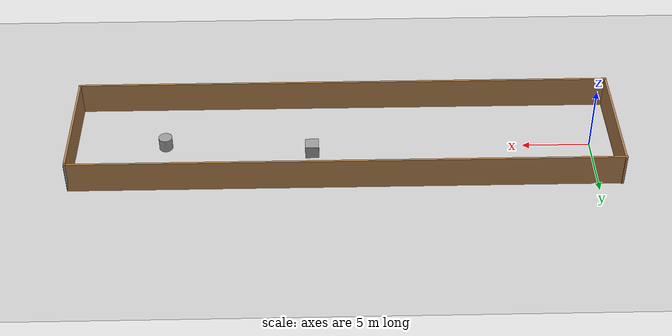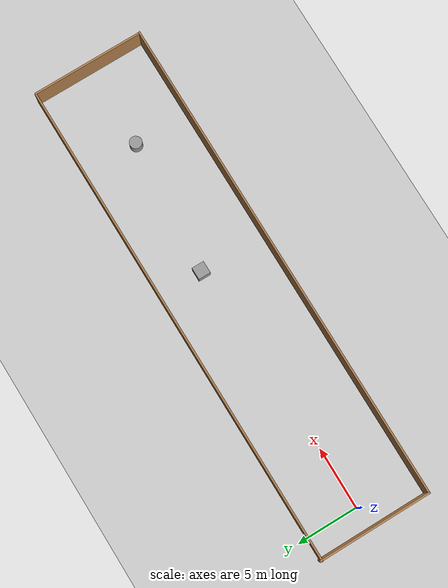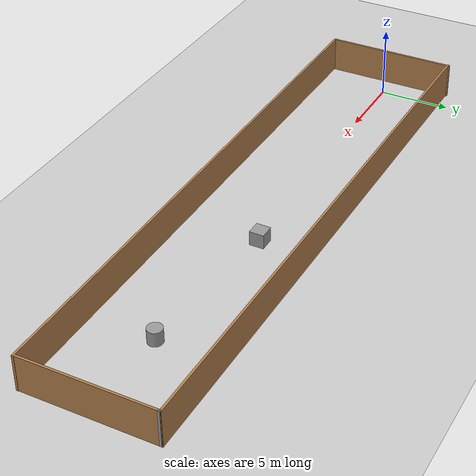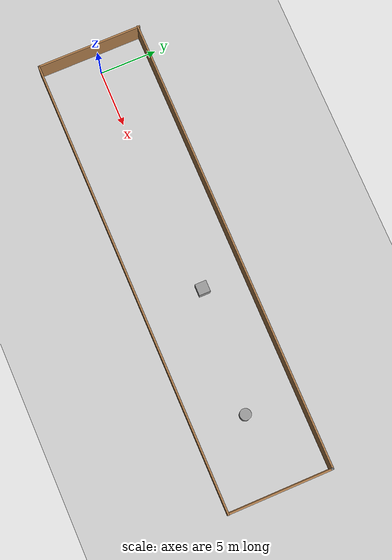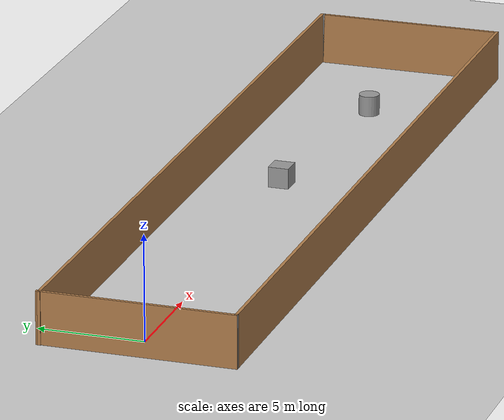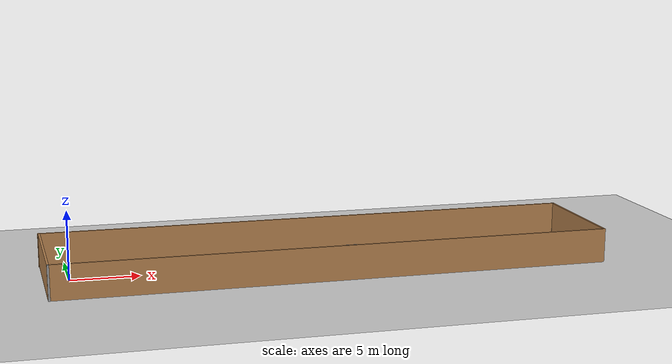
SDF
<sdf version="1.7">
 <world name="default">
  <light name="sun" type="directional">
   <pose>0 0 10 0 -0 0</pose>
   <diffuse>0.8 0.8 0.8 1</diffuse>
   <specular>0.2 0.2 0.2 1</specular>
   <attenuation>
    <range>1000</range>
    <constant>0.9</constant>
    <linear>0.01</linear>
    <quadratic>0.001</quadratic>
   </attenuation>
   <direction>-0.5 0.1 -0.9</direction>
   <spot><inner_angle>0</inner_angle><outer_angle>0</outer_angle><falloff>0</falloff></spot>
  </light>
  <model name="ground_plane">
   <static>1</static>
   <link name="link">
    <collision name="collision">
     <geometry><plane><normal>0 0 1</normal><size>100 100</size></plane></geometry>
     <surface><friction><ode><mu>100</mu><mu2>50</mu2></ode></friction></surface>
    </collision>
    <visual name="visual">
     <cast_shadows>0</cast_shadows>
     <geometry><plane><normal>0 0 1</normal><size>100 100</size></plane></geometry>
     <material>
      <script><uri>file://media/materials/scripts/gazebo.material</uri><name>Gazebo/Grey</name></script>
     </material>
    </visual>
   </link>
  </model>
  <gravity>0 0 -9.8</gravity>
  <magnetic_field>6e-06 2.3e-05 -4.2e-05</magnetic_field>
  <atmosphere type="adiabatic"/>
  <physics type="ode">
   <max_step_size>0.001</max_step_size>
   <real_time_factor>1</real_time_factor>
   <real_time_update_rate>1000</real_time_update_rate>
  </physics>
  <scene><ambient>0.4 0.4 0.4 1</ambient><background>0.7 0.7 0.7 1</background><shadows>1</shadows></scene>
  <spherical_coordinates>
   <surface_model>EARTH_WGS84</surface_model>
   <latitude_deg>0</latitude_deg>
   <longitude_deg>0</longitude_deg>
   <elevation>0</elevation>
   <heading_deg>0</heading_deg>
  </spherical_coordinates>
  <model name="mo_hinh">
   <pose>18.3035 -0.232501 0 0 -0 0</pose>
   <link name="Wall_1">
    <collision name="Wall_1_Collision">
     <geometry><box><size>9.25 0.15 2.5</size></box></geometry>
     <pose>0 0 1.25 0 -0 0</pose>
    </collision>
    <visual name="Wall_1_Visual">
     <pose>0 0 1.25 0 -0 0</pose>
     <geometry><box><size>9.25 0.15 2.5</size></box></geometry>
     <material>
      <script><uri>file://media/materials/scripts/gazebo.material</uri><name>Gazebo/Wood</name></script>
      <ambient>1 1 1 1</ambient>
     </material>
     <meta><layer>0</layer></meta>
    </visual>
    <pose>-20.033 0.009308 0 0 -0 -1.5708</pose>
   </link>
   <link name="Wall_10">
    <collision name="Wall_10_Collision">
     <geometry><box><size>0.15 0.15 2.5</size></box></geometry>
     <pose>0 0 1.25 0 -0 0</pose>
    </collision>
    <visual name="Wall_10_Visual">
     <pose>0 0 1.25 0 -0 0</pose>
     <geometry><box><size>0.15 0.15 2.5</size></box></geometry>
     <material>
      <script><uri>file://media/materials/scripts/gazebo.material</uri><name>Gazebo/Grey</name></script>
      <ambient>1 1 1 1</ambient>
     </material>
     <meta><layer>0</layer></meta>
    </visual>
    <pose>20.0278 4.4703 0 0 -0 0</pose>
   </link>
   <link name="Wall_12">
    <collision name="Wall_12_Collision">
     <geometry><box><size>40.25 0.15 2.5</size></box></geometry>
     <pose>0 0 1.25 0 -0 0</pose>
    </collision>
    <visual name="Wall_12_Visual">
     <pose>0 0 1.25 0 -0 0</pose>
     <geometry><box><size>40.25 0.15 2.5</size></box></geometry>
     <material>
      <script><uri>file://media/materials/scripts/gazebo.material</uri><name>Gazebo/Wood</name></script>
      <ambient>1 1 1 1</ambient>
     </material>
     <meta><layer>0</layer></meta>
    </visual>
    <pose>0.022194 -4.55931 0 0 -0 3.14159</pose>
   </link>
   <link name="Wall_13">
    <collision name="Wall_13_Collision">
     <geometry><box><size>0.15 0.15 2.5</size></box></geometry>
     <pose>0 0 1.25 0 -0 0</pose>
    </collision>
    <visual name="Wall_13_Visual">
     <pose>0 0 1.25 0 -0 0</pose>
     <geometry><box><size>0.15 0.15 2.5</size></box></geometry>
     <material>
      <script><uri>file://media/materials/scripts/gazebo.material</uri><name>Gazebo/Grey</name></script>
      <ambient>1 1 1 1</ambient>
     </material>
     <meta><layer>0</layer></meta>
    </visual>
    <pose>-20.0278 -4.55931 0 0 -0 0</pose>
   </link>
   <link name="Wall_15">
    <collision name="Wall_15_Collision">
     <geometry><box><size>9 0.15 2.5</size></box></geometry>
     <pose>0 0 1.25 0 -0 0</pose>
    </collision>
    <visual name="Wall_15_Visual">
     <pose>0 0 1.25 0 -0 0</pose>
     <geometry><box><size>9 0.15 2.5</size></box></geometry>
     <material>
      <script><uri>file://media/materials/scripts/gazebo.material</uri><name>Gazebo/Wood</name></script>
      <ambient>1 1 1 1</ambient>
     </material>
     <meta><layer>0</layer></meta>
    </visual>
    <pose>20.051 0.005714 0 0 -0 1.5708</pose>
   </link>
   <link name="Wall_16">
    <collision name="Wall_16_Collision">
     <geometry><box><size>0.15 0.15 2.5</size></box></geometry>
     <pose>0 0 1.25 0 -0 0</pose>
    </collision>
    <visual name="Wall_16_Visual">
     <pose>0 0 1.25 0 -0 0</pose>
     <geometry><box><size>0.15 0.15 2.5</size></box></geometry>
     <material>
      <script><uri>file://media/materials/scripts/gazebo.material</uri><name>Gazebo/Grey</name></script>
      <ambient>1 1 1 1</ambient>
     </material>
     <meta><layer>0</layer></meta>
    </visual>
    <pose>20.051 4.39026 0 0 -0 0</pose>
   </link>
   <link name="Wall_9">
    <collision name="Wall_9_Collision">
     <geometry><box><size>40.25 0.15 2.5</size></box></geometry>
     <pose>0 0 1.25 0 -0 0</pose>
    </collision>
    <visual name="Wall_9_Visual">
     <pose>0 0 1.25 0 -0 0</pose>
     <geometry><box><size>40.25 0.15 2.5</size></box></geometry>
     <material>
      <script><uri>file://media/materials/scripts/gazebo.material</uri><name>Gazebo/Wood</name></script>
      <ambient>1 1 1 1</ambient>
     </material>
     <meta><layer>0</layer></meta>
    </visual>
    <pose>-0.022194 4.4703 0 0 -0 0</pose>
   </link>
   <static>1</static>
  </model>
  <model name="unit_box">
   <pose>20.7523 0.571718 0.499995 -1e-05 -0 -0</pose>
   <link name="link">
    <inertial>
     <mass>1</mass>
     <inertia>
      <ixx>0.166667</ixx>
      <ixy>0</ixy>
      <ixz>0</ixz>
      <iyy>0.166667</iyy>
      <iyz>0</iyz>
      <izz>0.166667</izz>
     </inertia>
    </inertial>
    <collision name="collision"><geometry><box><size>1 1 1</size></box></geometry></collision>
    <visual name="visual">
     <geometry><box><size>1 1 1</size></box></geometry>
     <material>
      <script><name>Gazebo/Grey</name><uri>file://media/materials/scripts/gazebo.material</uri></script>
     </material>
    </visual>
   </link>
  </model>
  <model name="unit_cylinder">
   <pose>31.6539 -0.320326 0.499997 3e-06 4e-06 -0</pose>
   <link name="link">
    <inertial>
     <mass>1</mass>
     <inertia><ixx>0.145833</ixx><ixy>0</ixy><ixz>0</ixz><iyy>0.145833</iyy><iyz>0</iyz><izz>0.125</izz></inertia>
    </inertial>
    <collision name="collision">
     <geometry><cylinder><radius>0.5</radius><length>1</length></cylinder></geometry>
    </collision>
    <visual name="visual">
     <geometry><cylinder><radius>0.5</radius><length>1</length></cylinder></geometry>
     <material>
      <script><name>Gazebo/Grey</name><uri>file://media/materials/scripts/gazebo.material</uri></script>
     </material>
    </visual>
   </link>
  </model>
 </world>
</sdf>
